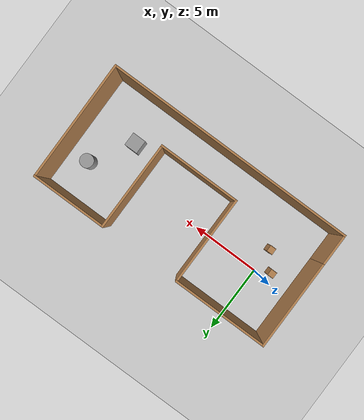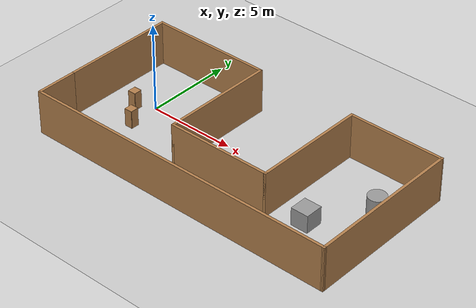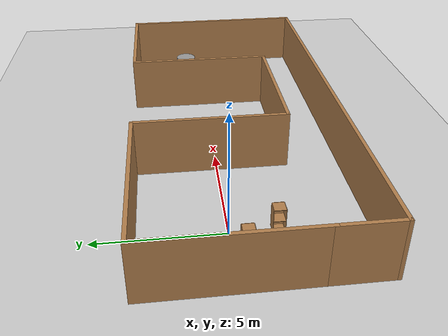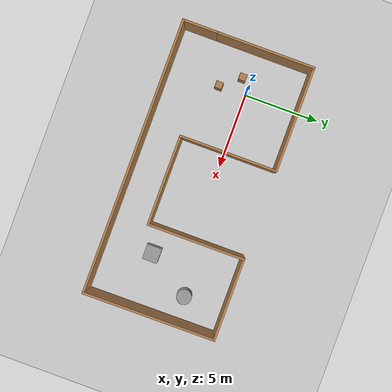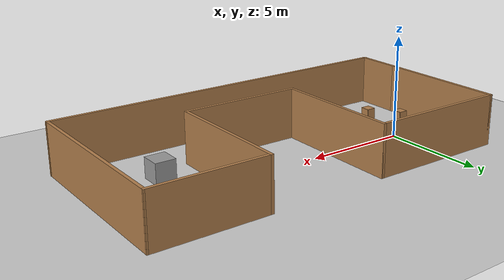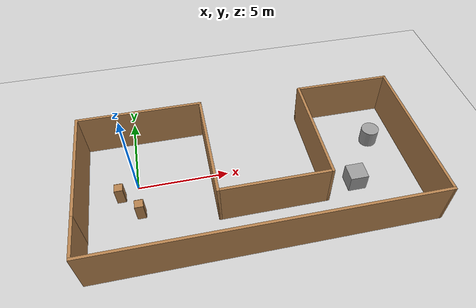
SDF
<sdf version="1.7">
 <world name="default">
  <light name="sun" type="directional">
   <pose>0 0 10 0 -0 0</pose>
   <diffuse>0.8 0.8 0.8 1</diffuse>
   <specular>0.2 0.2 0.2 1</specular>
   <attenuation>
    <range>1000</range>
    <constant>0.9</constant>
    <linear>0.01</linear>
    <quadratic>0.001</quadratic>
   </attenuation>
   <direction>-0.5 0.1 -0.9</direction>
   <spot><inner_angle>0</inner_angle><outer_angle>0</outer_angle><falloff>0</falloff></spot>
  </light>
  <model name="ground_plane">
   <static>1</static>
   <link name="link">
    <collision name="collision">
     <geometry><plane><normal>0 0 1</normal><size>100 100</size></plane></geometry>
     <surface><friction><ode><mu>100</mu><mu2>50</mu2></ode></friction></surface>
    </collision>
    <visual name="visual">
     <cast_shadows>0</cast_shadows>
     <geometry><plane><normal>0 0 1</normal><size>100 100</size></plane></geometry>
     <material>
      <script><uri>file://media/materials/scripts/gazebo.material</uri><name>Gazebo/Grey</name></script>
     </material>
    </visual>
   </link>
  </model>
  <gravity>0 0 -9.8</gravity>
  <magnetic_field>6e-06 2.3e-05 -4.2e-05</magnetic_field>
  <atmosphere type="adiabatic"/>
  <physics type="ode">
   <max_step_size>0.001</max_step_size>
   <real_time_factor>1</real_time_factor>
   <real_time_update_rate>1000</real_time_update_rate>
  </physics>
  <scene><ambient>0.4 0.4 0.4 1</ambient><background>0.7 0.7 0.7 1</background><shadows>1</shadows></scene>
  <audio><device>default</device></audio>
  <spherical_coordinates>
   <surface_model>EARTH_WGS84</surface_model>
   <latitude_deg>0</latitude_deg>
   <longitude_deg>0</longitude_deg>
   <elevation>0</elevation>
   <heading_deg>0</heading_deg>
  </spherical_coordinates>
  <model name="cabinet">
   <static>1</static>
   <link name="cabinet_bottom_plate">
    <inertial>
     <pose>0 0 -1 0 -0 0</pose>
     <inertia><ixx>2.05</ixx><ixy>0</ixy><ixz>0</ixz><iyy>2.05</iyy><iyz>0</iyz><izz>2.05</izz></inertia>
     <mass>25</mass>
    </inertial>
    <collision name="cabinet_bottom_plate_geom">
     <pose>0 0 0.01 0 -0 0</pose>
     <geometry><box><size>0.45 0.45 0.02</size></box></geometry>
    </collision>
    <visual name="cabinet_bottom_plate_geom_visual">
     <pose>0 0 0.01 0 -0 0</pose>
     <geometry><box><size>0.45 0.45 0.02</size></box></geometry>
     <material>
      <script><uri>file://media/materials/scripts/gazebo.material</uri><name>Gazebo/Wood</name></script>
     </material>
    </visual>
    <collision name="cabinet_bottom_plate_geom_cabinet_back_plate">
     <pose>0.235 0 0.51 0 -0 0</pose>
     <geometry><box><size>0.02 0.45 1.02</size></box></geometry>
    </collision>
    <visual name="cabinet_bottom_plate_geom_cabinet_back_plate_visual">
     <pose>0.235 0 0.51 0 -0 0</pose>
     <geometry><box><size>0.02 0.45 1.02</size></box></geometry>
     <material>
      <script><uri>file://media/materials/scripts/gazebo.material</uri><name>Gazebo/Wood</name></script>
     </material>
    </visual>
    <collision name="cabinet_bottom_plate_geom_cabinet_left_plate">
     <pose>0 0.235 0.51 0 -0 0</pose>
     <geometry><box><size>0.45 0.02 1.02</size></box></geometry>
    </collision>
    <visual name="cabinet_bottom_plate_geom_cabinet_left_plate_visual">
     <pose>0 0.235 0.51 0 -0 0</pose>
     <geometry><box><size>0.45 0.02 1.02</size></box></geometry>
     <material>
      <script><uri>file://media/materials/scripts/gazebo.material</uri><name>Gazebo/Wood</name></script>
     </material>
    </visual>
    <collision name="cabinet_bottom_plate_geom_cabinet_middle_plate">
     <pose>0 0 0.51 0 -0 0</pose>
     <geometry><box><size>0.45 0.45 0.02</size></box></geometry>
    </collision>
    <visual name="cabinet_bottom_plate_geom_cabinet_middle_plate_visual">
     <pose>0 0 0.51 0 -0 0</pose>
     <geometry><box><size>0.45 0.45 0.02</size></box></geometry>
     <material>
      <script><uri>file://media/materials/scripts/gazebo.material</uri><name>Gazebo/Wood</name></script>
     </material>
    </visual>
    <collision name="cabinet_bottom_plate_geom_cabinet_right_plate">
     <pose>0 -0.235 0.51 0 -0 0</pose>
     <geometry><box><size>0.45 0.02 1.02</size></box></geometry>
    </collision>
    <visual name="cabinet_bottom_plate_geom_cabinet_right_plate_visual">
     <pose>0 -0.235 0.51 0 -0 0</pose>
     <geometry><box><size>0.45 0.02 1.02</size></box></geometry>
     <material>
      <script><uri>file://media/materials/scripts/gazebo.material</uri><name>Gazebo/Wood</name></script>
     </material>
    </visual>
    <collision name="cabinet_bottom_plate_geom_cabinet_top_plate">
     <pose>0 0 1.01 0 -0 0</pose>
     <geometry><box><size>0.45 0.45 0.02</size></box></geometry>
    </collision>
    <visual name="cabinet_bottom_plate_geom_cabinet_top_plate_visual">
     <pose>0 0 1.01 0 -0 0</pose>
     <geometry><box><size>0.45 0.45 0.02</size></box></geometry>
     <material>
      <script><uri>file://media/materials/scripts/gazebo.material</uri><name>Gazebo/Wood</name></script>
     </material>
    </visual>
   </link>
   <pose>0.087287 -1.82606 0 0 -0 0</pose>
  </model>
  <model name="cabinet_0">
   <static>1</static>
   <link name="cabinet_bottom_plate">
    <inertial>
     <pose>0 0 -1 0 -0 0</pose>
     <inertia><ixx>2.05</ixx><ixy>0</ixy><ixz>0</ixz><iyy>2.05</iyy><iyz>0</iyz><izz>2.05</izz></inertia>
     <mass>25</mass>
    </inertial>
    <collision name="cabinet_bottom_plate_geom">
     <pose>0 0 0.01 0 -0 0</pose>
     <geometry><box><size>0.45 0.45 0.02</size></box></geometry>
    </collision>
    <visual name="cabinet_bottom_plate_geom_visual">
     <pose>0 0 0.01 0 -0 0</pose>
     <geometry><box><size>0.45 0.45 0.02</size></box></geometry>
     <material>
      <script><uri>file://media/materials/scripts/gazebo.material</uri><name>Gazebo/Wood</name></script>
     </material>
    </visual>
    <collision name="cabinet_bottom_plate_geom_cabinet_back_plate">
     <pose>0.235 0 0.51 0 -0 0</pose>
     <geometry><box><size>0.02 0.45 1.02</size></box></geometry>
    </collision>
    <visual name="cabinet_bottom_plate_geom_cabinet_back_plate_visual">
     <pose>0.235 0 0.51 0 -0 0</pose>
     <geometry><box><size>0.02 0.45 1.02</size></box></geometry>
     <material>
      <script><uri>file://media/materials/scripts/gazebo.material</uri><name>Gazebo/Wood</name></script>
     </material>
    </visual>
    <collision name="cabinet_bottom_plate_geom_cabinet_left_plate">
     <pose>0 0.235 0.51 0 -0 0</pose>
     <geometry><box><size>0.45 0.02 1.02</size></box></geometry>
    </collision>
    <visual name="cabinet_bottom_plate_geom_cabinet_left_plate_visual">
     <pose>0 0.235 0.51 0 -0 0</pose>
     <geometry><box><size>0.45 0.02 1.02</size></box></geometry>
     <material>
      <script><uri>file://media/materials/scripts/gazebo.material</uri><name>Gazebo/Wood</name></script>
     </material>
    </visual>
    <collision name="cabinet_bottom_plate_geom_cabinet_middle_plate">
     <pose>0 0 0.51 0 -0 0</pose>
     <geometry><box><size>0.45 0.45 0.02</size></box></geometry>
    </collision>
    <visual name="cabinet_bottom_plate_geom_cabinet_middle_plate_visual">
     <pose>0 0 0.51 0 -0 0</pose>
     <geometry><box><size>0.45 0.45 0.02</size></box></geometry>
     <material>
      <script><uri>file://media/materials/scripts/gazebo.material</uri><name>Gazebo/Wood</name></script>
     </material>
    </visual>
    <collision name="cabinet_bottom_plate_geom_cabinet_right_plate">
     <pose>0 -0.235 0.51 0 -0 0</pose>
     <geometry><box><size>0.45 0.02 1.02</size></box></geometry>
    </collision>
    <visual name="cabinet_bottom_plate_geom_cabinet_right_plate_visual">
     <pose>0 -0.235 0.51 0 -0 0</pose>
     <geometry><box><size>0.45 0.02 1.02</size></box></geometry>
     <material>
      <script><uri>file://media/materials/scripts/gazebo.material</uri><name>Gazebo/Wood</name></script>
     </material>
    </visual>
    <collision name="cabinet_bottom_plate_geom_cabinet_top_plate">
     <pose>0 0 1.01 0 -0 0</pose>
     <geometry><box><size>0.45 0.45 0.02</size></box></geometry>
    </collision>
    <visual name="cabinet_bottom_plate_geom_cabinet_top_plate_visual">
     <pose>0 0 1.01 0 -0 0</pose>
     <geometry><box><size>0.45 0.45 0.02</size></box></geometry>
     <material>
      <script><uri>file://media/materials/scripts/gazebo.material</uri><name>Gazebo/Wood</name></script>
     </material>
    </visual>
   </link>
   <pose>-0.914315 -0.569297 0 0 -0 0</pose>
  </model>
  <model name="wall">
   <pose>6.30016 -0.92517 0 0 -0 0</pose>
   <link name="Wall_0">
    <collision name="Wall_0_Collision">
     <geometry><box><size>6.5 0.15 2.5</size></box></geometry>
     <pose>0 0 1.25 0 -0 0</pose>
    </collision>
    <visual name="Wall_0_Visual">
     <pose>0 0 1.25 0 -0 0</pose>
     <geometry><box><size>6.5 0.15 2.5</size></box></geometry>
     <material>
      <script><uri>file://media/materials/scripts/gazebo.material</uri><name>Gazebo/Wood</name></script>
      <ambient>1 1 1 1</ambient>
     </material>
     <meta><layer>0</layer></meta>
    </visual>
    <pose>-9.05021 1.16439 0 0 -0 1.5708</pose>
   </link>
   <link name="Wall_1">
    <collision name="Wall_1_Collision">
     <geometry><box><size>7 0.15 2.5</size></box></geometry>
     <pose>0 0 1.25 0 -0 0</pose>
    </collision>
    <visual name="Wall_1_Visual">
     <pose>0 0 1.25 0 -0 0</pose>
     <geometry><box><size>7 0.15 2.5</size></box></geometry>
     <material>
      <script><uri>file://media/materials/scripts/gazebo.material</uri><name>Gazebo/Wood</name></script>
      <ambient>1 1 1 1</ambient>
     </material>
     <meta><layer>0</layer></meta>
    </visual>
    <pose>-5.62521 4.33939 0 0 -0 0</pose>
   </link>
   <link name="Wall_2">
    <collision name="Wall_2_Collision">
     <geometry><box><size>6.5 0.15 2.5</size></box></geometry>
     <pose>0 0 1.25 0 -0 0</pose>
    </collision>
    <visual name="Wall_2_Visual">
     <pose>0 0 1.25 0 -0 0</pose>
     <geometry><box><size>6.5 0.15 2.5</size></box></geometry>
     <material>
      <script><uri>file://media/materials/scripts/gazebo.material</uri><name>Gazebo/Wood</name></script>
      <ambient>1 1 1 1</ambient>
     </material>
     <meta><layer>0</layer></meta>
    </visual>
    <pose>-2.20022 1.16439 0 0 -0 -1.5708</pose>
   </link>
   <link name="Wall_3">
    <collision name="Wall_3_Collision">
     <geometry><box><size>6 0.15 2.5</size></box></geometry>
     <pose>0 0 1.25 0 -0 0</pose>
    </collision>
    <visual name="Wall_3_Visual">
     <pose>0 0 1.25 0 -0 0</pose>
     <geometry><box><size>6 0.15 2.5</size></box></geometry>
     <material>
      <script><uri>file://media/materials/scripts/gazebo.material</uri><name>Gazebo/Wood</name></script>
      <ambient>1 1 1 1</ambient>
     </material>
     <meta><layer>0</layer></meta>
    </visual>
    <pose>0.724784 -2.01061 0 0 -0 0</pose>
   </link>
   <link name="Wall_4">
    <collision name="Wall_4_Collision">
     <geometry><box><size>6.5 0.15 2.5</size></box></geometry>
     <pose>0 0 1.25 0 -0 0</pose>
    </collision>
    <visual name="Wall_4_Visual">
     <pose>0 0 1.25 0 -0 0</pose>
     <geometry><box><size>6.5 0.15 2.5</size></box></geometry>
     <material>
      <script><uri>file://media/materials/scripts/gazebo.material</uri><name>Gazebo/Wood</name></script>
      <ambient>1 1 1 1</ambient>
     </material>
     <meta><layer>0</layer></meta>
    </visual>
    <pose>3.64979 1.16439 0 0 -0 1.5708</pose>
   </link>
   <link name="Wall_5">
    <collision name="Wall_5_Collision">
     <geometry><box><size>5.5 0.15 2.5</size></box></geometry>
     <pose>0 0 1.25 0 -0 0</pose>
    </collision>
    <visual name="Wall_5_Visual">
     <pose>0 0 1.25 0 -0 0</pose>
     <geometry><box><size>5.5 0.15 2.5</size></box></geometry>
     <material>
      <script><uri>file://media/materials/scripts/gazebo.material</uri><name>Gazebo/Wood</name></script>
      <ambient>1 1 1 1</ambient>
     </material>
     <meta><layer>0</layer></meta>
    </visual>
    <pose>6.32478 4.33939 0 0 -0 0</pose>
   </link>
   <link name="Wall_6">
    <collision name="Wall_6_Collision">
     <geometry><box><size>8.82892 0.15 2.5</size></box></geometry>
     <pose>0 0 1.25 0 -0 0</pose>
    </collision>
    <visual name="Wall_6_Visual">
     <pose>0 0 1.25 0 -0 0</pose>
     <geometry><box><size>8.82892 0.15 2.5</size></box></geometry>
     <material>
      <script><uri>file://media/materials/scripts/gazebo.material</uri><name>Gazebo/Wood</name></script>
      <ambient>1 1 1 1</ambient>
     </material>
     <meta><layer>0</layer></meta>
    </visual>
    <pose>9.02478 0 0 0 -0 -1.56503</pose>
   </link>
   <link name="Wall_7">
    <collision name="Wall_7_Collision">
     <geometry><box><size>18.25 0.15 2.5</size></box></geometry>
     <pose>0 0 1.25 0 -0 0</pose>
    </collision>
    <visual name="Wall_7_Visual">
     <pose>0 0 1.25 0 -0 0</pose>
     <geometry><box><size>18.25 0.15 2.5</size></box></geometry>
     <material>
      <script><uri>file://media/materials/scripts/gazebo.material</uri><name>Gazebo/Wood</name></script>
      <ambient>1 1 1 1</ambient>
     </material>
     <meta><layer>0</layer></meta>
    </visual>
    <pose>-0.000216 -4.33939 0 0 -0 3.14159</pose>
   </link>
   <link name="Wall_8">
    <collision name="Wall_8_Collision">
     <geometry><box><size>2.44379 0.15 2.5</size></box></geometry>
     <pose>0 0 1.25 0 -0 0</pose>
    </collision>
    <visual name="Wall_8_Visual">
     <pose>0 0 1.25 0 -0 0</pose>
     <geometry><box><size>2.44379 0.15 2.5</size></box></geometry>
     <material>
      <script><uri>file://media/materials/scripts/gazebo.material</uri><name>Gazebo/Wood</name></script>
      <ambient>1 1 1 1</ambient>
     </material>
     <meta><layer>0</layer></meta>
    </visual>
    <pose>-9.05021 -3.15751 0 0 -0 1.5708</pose>
   </link>
   <static>1</static>
  </model>
  <model name="unit_box">
   <pose>11.7705 -2.13576 0.499995 0 1e-05 0</pose>
   <link name="link">
    <inertial>
     <mass>1</mass>
     <inertia>
      <ixx>0.166667</ixx>
      <ixy>0</ixy>
      <ixz>0</ixz>
      <iyy>0.166667</iyy>
      <iyz>0</iyz>
      <izz>0.166667</izz>
     </inertia>
    </inertial>
    <collision name="collision"><geometry><box><size>1 1 1</size></box></geometry></collision>
    <visual name="visual">
     <geometry><box><size>1 1 1</size></box></geometry>
     <material>
      <script><name>Gazebo/Grey</name><uri>file://media/materials/scripts/gazebo.material</uri></script>
     </material>
    </visual>
   </link>
  </model>
  <model name="unit_cylinder">
   <pose>13.6766 0.756545 0.499993 -3e-06 -4e-06 -0</pose>
   <link name="link">
    <inertial>
     <mass>1</mass>
     <inertia><ixx>0.145833</ixx><ixy>0</ixy><ixz>0</ixz><iyy>0.145833</iyy><iyz>0</iyz><izz>0.125</izz></inertia>
    </inertial>
    <collision name="collision">
     <geometry><cylinder><radius>0.5</radius><length>1</length></cylinder></geometry>
    </collision>
    <visual name="visual">
     <geometry><cylinder><radius>0.5</radius><length>1</length></cylinder></geometry>
     <material>
      <script><name>Gazebo/Grey</name><uri>file://media/materials/scripts/gazebo.material</uri></script>
     </material>
    </visual>
   </link>
  </model>
 </world>
</sdf>
